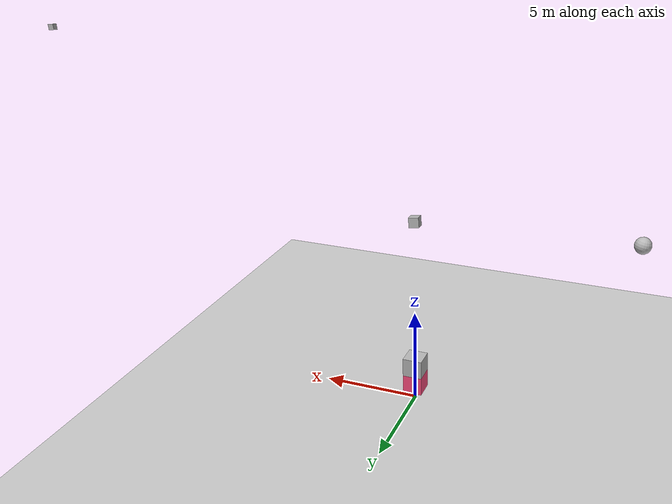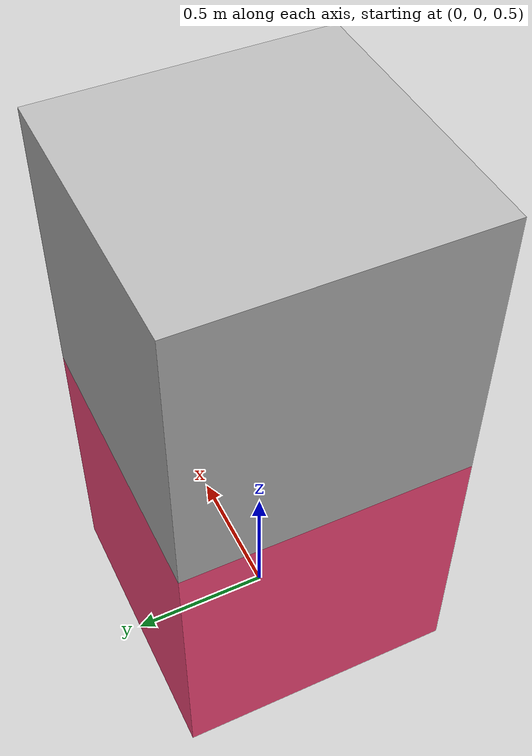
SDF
<?xml version="1.0" ?>
<sdf version="1.5">
    <world name="default">
        <include>
            <uri>model://ground_plane</uri>
        </include>
        <include>
            <uri>model://sun</uri>
        </include>
        <physics type="ode">
            <max_step_size>0.001</max_step_size>
            <real_time_factor>1</real_time_factor>
            <real_time_update_rate>1000</real_time_update_rate>
            <ode>
                <solver>
                    <type>quick</type>
                    <iters>50</iters>
                    <sor>1.4</sor>
                </solver>
                <constraints>
                    <cfm>0</cfm>
                    <erp>1</erp>
                    <contact_max_correcting_vel>0</contact_max_correcting_vel>
                    <contact_surface_layer>0</contact_surface_layer>
                </constraints>
            </ode>
        </physics>

        <scene>
            <ambient>0.5 0.5 0.5 1</ambient>
            <background>0.5 0.5 0.5 1</background>
            <shadows>0</shadows>
        </scene>

        <model name="model_test_1">
            <pose>0 0 0.5 0 0 0</pose>
            <static>false</static>

            <link name="link_1">
                <pose>0 0 0 0 0 0</pose>
                <inertial>
                    <inertia>
                        <ixx>1</ixx>
                        <ixy>0</ixy>
                        <ixz>0</ixz>
                        <iyy>1</iyy>
                        <iyz>0</iyz>
                        <izz>1</izz>
                    </inertia>
                    <mass>1.0</mass>
                </inertial>

                <collision name="collision">
                    <pose>0 0 0.5 0 0 0</pose>
                    <geometry>
                        <box>
                            <size>1 1 1</size>
                        </box>
                    </geometry>
                </collision>

                <visual name="visual">
                    <pose>0 0 0.5 0 0 0</pose>
                    <geometry>
                        <box>
                            <size>1 1 1</size>
                        </box>
                    </geometry>
                    <material>
                        <diffuse>1.0 0.3 0.5 1.0</diffuse>
                        <specular>.1 .1 .1 1.0</specular>
                    </material>

                </visual>
            </link>
            <link name="link_2">
                <pose>0 0 1 0 0 0</pose>
                <inertial>
                    <inertia>
                        <ixx>1</ixx>
                        <ixy>0</ixy>
                        <ixz>0</ixz>
                        <iyy>1</iyy>
                        <iyz>0</iyz>
                        <izz>1</izz>
                    </inertia>
                    <mass>1.0</mass>
                </inertial>

                <collision name="collision">
                    <pose>0 0 0.5 0 0 0</pose>
                    <geometry>
                        <box>
                            <size>1 1 1</size>
                        </box>
                    </geometry>
                </collision>

                <visual name="visual">
                    <pose>0 0 0.5 0 0 0</pose>
                    <geometry>
                        <box>
                            <size>1 1 1</size>
                        </box>
                    </geometry>
                </visual>
            </link>
            <joint name="joint" type="revolute">
                <parent>link_1</parent>
                <child>link_2</child>
                <pose>0 0.5 0 0 0 0</pose>
                <axis>
                    <xyz>0 0 1</xyz>
                </axis>
            </joint>
        </model>

        <model name="model_test_2">
            <pose>0 0 10 0.1 0.1 0.1</pose>
            <static>false</static>

            <link name="link">
                <pose>0 0 0 0 0 0</pose>
                <inertial>
                    <inertia>
                        <ixx>1</ixx>
                        <ixy>0</ixy>
                        <ixz>0</ixz>
                        <iyy>1</iyy>
                        <iyz>0</iyz>
                        <izz>1</izz>
                    </inertia>
                    <mass>1.0</mass>
                </inertial>

                <collision name="collision">
                    <pose>0 0 0 0 0 0</pose>
                    <geometry>
                        <box>
                            <size>0.5 0.5 0.5</size>
                        </box>
                    </geometry>
                </collision>

                <visual name="visual">
                    <pose>0 0 0 0 0 0</pose>
                    <geometry>
                        <box>
                            <size>0.5 0.5 0.5</size>
                        </box>
                    </geometry>
                </visual>
            </link>
        </model>

        <model name="model_test_3">
            <pose>10 10 20 0.1 0.1 0.1</pose>
            <static>false</static>

            <link name="link">
                <pose>0 0 0 0 0 0</pose>
                <inertial>
                    <inertia>
                        <ixx>1</ixx>
                        <ixy>0</ixy>
                        <ixz>0</ixz>
                        <iyy>1</iyy>
                        <iyz>0</iyz>
                        <izz>1</izz>
                    </inertia>
                    <mass>1.0</mass>
                </inertial>

                <collision name="collision">
                    <pose>0 0 0 0 0 0</pose>
                    <geometry>
                        <box>
                            <size>0.2 0.2 0.2</size>
                        </box>
                    </geometry>
                </collision>

                <visual name="visual">
                    <pose>0 0 0 0 0 0</pose>
                    <geometry>
                        <box>
                            <size>0.2 0.2 0.2</size>
                        </box>
                    </geometry>
                </visual>
            </link>
        </model>

        <model name="model_test_4">
            <pose>-10 -10 6 0.1 -0.2 0.1</pose>
            <static>false</static>

            <link name="link">
                <pose>0 0 0 0 0 0</pose>
                <inertial>
                    <inertia>
                        <ixx>0.05</ixx>
                        <ixy>0</ixy>
                        <ixz>0</ixz>
                        <iyy>0.05</iyy>
                        <iyz>0</iyz>
                        <izz>0.05</izz>
                    </inertia>
                    <mass>0.5</mass>
                </inertial>

                <collision name="collision">
                    <pose>0 0 0 0 0 0</pose>
                    <geometry>
                        <sphere>
                            <radius>0.5</radius>
                        </sphere>
                    </geometry>
                </collision>

                <visual name="visual">
                    <pose>0 0 0 0 0 0</pose>
                    <geometry>
                        <sphere>
                            <radius>0.5</radius>
                        </sphere>
                    </geometry>
                </visual>
            </link>
        </model>

        <light type="point" name="light_test_1">
            <pose>0 2 2 0 0 -1</pose>
            <diffuse>1 0.1 0.1 1</diffuse>
            <specular>.1 .1 .1 1</specular>
            <attenuation>
                <range>20</range>
                <constant>0.8</constant>
                <linear>0.2</linear>
                <quadratic>0.01</quadratic>
            </attenuation>
            <cast_shadows>false</cast_shadows>
        </light>

        <light type="point" name="light_test_2">
            <pose>2 0 2 0 0 -1</pose>
            <diffuse>0.1 1 0.1 1</diffuse>
            <specular>.1 .1 .1 1</specular>
            <attenuation>
                <range>20</range>
                <linear>0.2</linear>
                <constant>0.8</constant>
                <quadratic>0.01</quadratic>
            </attenuation>
            <cast_shadows>false</cast_shadows>
        </light>
    </world>
</sdf>
